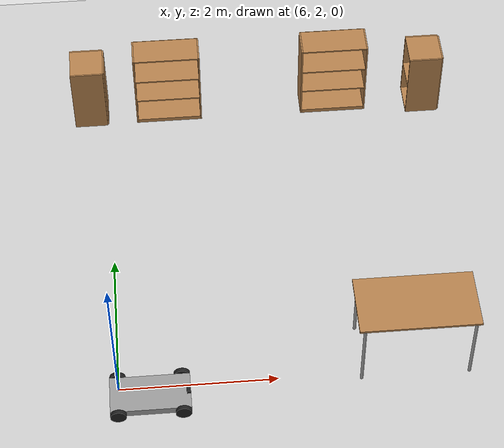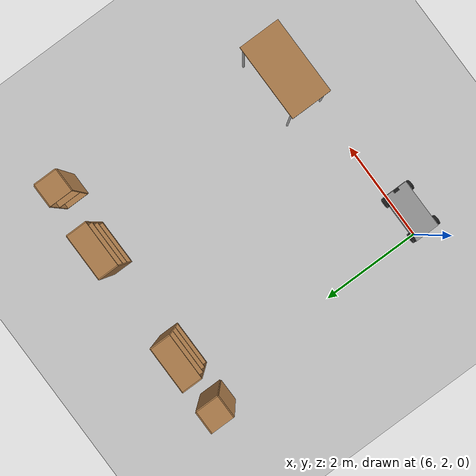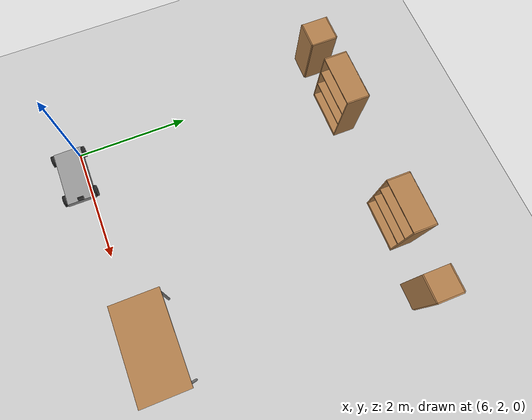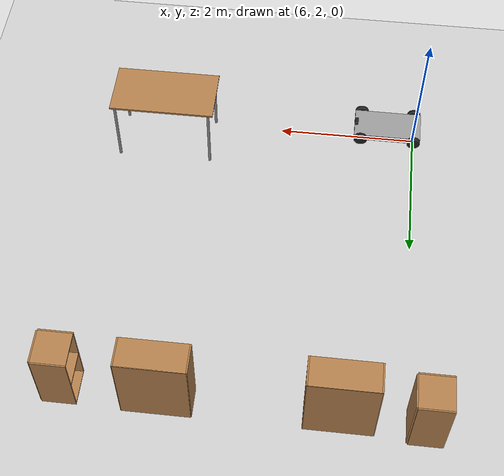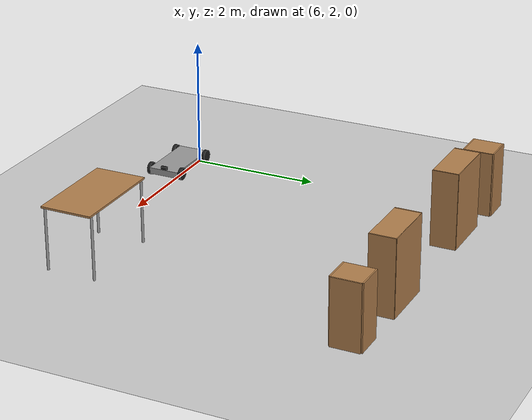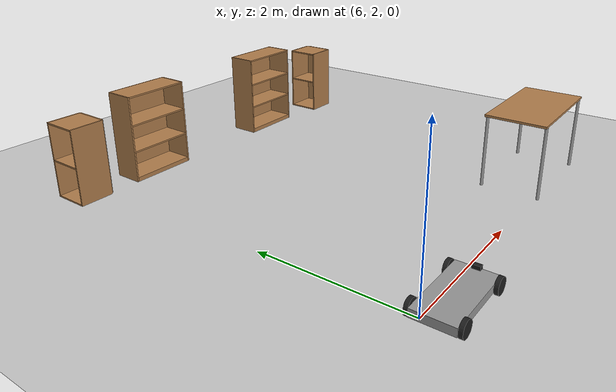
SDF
<sdf version="1.6">
 <world name="default">
  <model name="ground_plane">
   <static>1</static>
   <link name="link">
    <collision name="collision">
     <geometry><plane><normal>0 0 1</normal><size>100 100</size></plane></geometry>
     <surface>
      <contact><collide_bitmask>65535</collide_bitmask></contact>
      <friction><ode><mu>100</mu><mu2>50</mu2></ode></friction>
     </surface>
    </collision>
    <visual name="visual">
     <cast_shadows>0</cast_shadows>
     <geometry><plane><normal>0 0 1</normal><size>100 100</size></plane></geometry>
     <material>
      <script><uri>file://media/materials/scripts/gazebo.material</uri><name>Gazebo/Grey</name></script>
     </material>
    </visual>
   </link>
  </model>
  <model name="Robot">
   <link name="link_0">
    <pose>-0.395787 -0.010871 -0.185833 0 -0 0</pose>
    <inertial>
     <mass>1</mass>
     <inertia>
      <ixx>0.166667</ixx>
      <ixy>0</ixy>
      <ixz>0</ixz>
      <iyy>0.166667</iyy>
      <iyz>0</iyz>
      <izz>0.166667</izz>
     </inertia>
    </inertial>
    <visual name="visual">
     <geometry><box><size>1 0.5 0.1</size></box></geometry>
     <material>
      <lighting>1</lighting>
      <script><uri>file://media/materials/scripts/gazebo.material</uri><name>Gazebo/Grey</name></script>
      <shader type="pixel"><normal_map>__default__</normal_map></shader>
      <ambient>0.5 0.5 0.5 1</ambient>
      <diffuse>1 1 1 1</diffuse>
      <specular>0.11 0.11 0.11 1</specular>
      <emissive>0 0 0 1</emissive>
     </material>
    </visual>
    <collision name="collision">
     <geometry><box><size>1 0.5 0.1</size></box></geometry>
     <surface>
      <friction>
       <ode><mu>1</mu><mu2>1</mu2><fdir1>0 0 0</fdir1><slip1>0</slip1><slip2>0</slip2></ode>
       <torsional>
        <coefficient>1</coefficient>
        <patch_radius>0</patch_radius>
        <surface_radius>0</surface_radius>
        <use_patch_radius>1</use_patch_radius>
        <ode><slip>0</slip></ode>
       </torsional>
      </friction>
      <bounce><restitution_coefficient>0</restitution_coefficient><threshold>1e+06</threshold></bounce>
      <contact>
       <collide_without_contact>0</collide_without_contact>
       <collide_without_contact_bitmask>1</collide_without_contact_bitmask>
       <collide_bitmask>1</collide_bitmask>
       <ode>
        <soft_cfm>0</soft_cfm>
        <soft_erp>0.2</soft_erp>
        <kp>1e+13</kp>
        <kd>1</kd>
        <max_vel>0.01</max_vel>
        <min_depth>0</min_depth>
       </ode>
       <bullet>
        <split_impulse>1</split_impulse>
        <split_impulse_penetration_threshold>-0.01</split_impulse_penetration_threshold>
        <soft_cfm>0</soft_cfm>
        <soft_erp>0.2</soft_erp>
        <kp>1e+13</kp>
        <kd>1</kd>
       </bullet>
      </contact>
     </surface>
    </collision>
   </link>
   <link name="link_1">
    <pose>-0.795787 -0.285871 -0.185833 1.5708 -0 0</pose>
    <inertial>
     <mass>1</mass>
     <inertia><ixx>0.145833</ixx><ixy>0</ixy><ixz>0</ixz><iyy>0.145833</iyy><iyz>0</iyz><izz>0.125</izz></inertia>
    </inertial>
    <visual name="visual">
     <geometry><cylinder><radius>0.1</radius><length>0.05</length></cylinder></geometry>
     <material>
      <lighting>1</lighting>
      <script><uri>file://media/materials/scripts/gazebo.material</uri><name>Gazebo/Black</name></script>
      <shader type="pixel"><normal_map>__default__</normal_map></shader>
      <ambient>0.1 0.1 0.1 1</ambient>
      <diffuse>0.5 0.5 0.5 1</diffuse>
      <specular>0.01 0.01 0.01 1</specular>
      <emissive>0 0 0 1</emissive>
     </material>
    </visual>
    <collision name="collision">
     <geometry><cylinder><radius>0.1</radius><length>0.05</length></cylinder></geometry>
     <surface>
      <friction>
       <ode><mu>1</mu><mu2>1</mu2><fdir1>0 0 0</fdir1><slip1>0</slip1><slip2>0</slip2></ode>
       <torsional>
        <coefficient>1</coefficient>
        <patch_radius>0</patch_radius>
        <surface_radius>0</surface_radius>
        <use_patch_radius>1</use_patch_radius>
        <ode><slip>0</slip></ode>
       </torsional>
      </friction>
      <bounce><restitution_coefficient>0</restitution_coefficient><threshold>1e+06</threshold></bounce>
      <contact>
       <collide_without_contact>0</collide_without_contact>
       <collide_without_contact_bitmask>1</collide_without_contact_bitmask>
       <collide_bitmask>1</collide_bitmask>
       <ode>
        <soft_cfm>0</soft_cfm>
        <soft_erp>0.2</soft_erp>
        <kp>1e+13</kp>
        <kd>1</kd>
        <max_vel>0.01</max_vel>
        <min_depth>0</min_depth>
       </ode>
       <bullet>
        <split_impulse>1</split_impulse>
        <split_impulse_penetration_threshold>-0.01</split_impulse_penetration_threshold>
        <soft_cfm>0</soft_cfm>
        <soft_erp>0.2</soft_erp>
        <kp>1e+13</kp>
        <kd>1</kd>
       </bullet>
      </contact>
     </surface>
    </collision>
   </link>
   <link name="link_1_clone">
    <pose>0.004213 0.264129 -0.185833 1.5708 -0 0</pose>
    <inertial>
     <mass>1</mass>
     <inertia><ixx>0.145833</ixx><ixy>0</ixy><ixz>0</ixz><iyy>0.145833</iyy><iyz>0</iyz><izz>0.125</izz></inertia>
    </inertial>
    <visual name="visual">
     <geometry><cylinder><radius>0.1</radius><length>0.05</length></cylinder></geometry>
     <material>
      <lighting>1</lighting>
      <script><uri>file://media/materials/scripts/gazebo.material</uri><name>Gazebo/Black</name></script>
      <shader type="pixel"><normal_map>__default__</normal_map></shader>
      <ambient>0.1 0.1 0.1 1</ambient>
      <diffuse>0.5 0.5 0.5 1</diffuse>
      <specular>0.01 0.01 0.01 1</specular>
      <emissive>0 0 0 1</emissive>
     </material>
    </visual>
    <collision name="collision">
     <geometry><cylinder><radius>0.1</radius><length>0.05</length></cylinder></geometry>
     <surface>
      <friction>
       <ode><mu>1</mu><mu2>1</mu2><fdir1>0 0 0</fdir1><slip1>0</slip1><slip2>0</slip2></ode>
       <torsional>
        <coefficient>1</coefficient>
        <patch_radius>0</patch_radius>
        <surface_radius>0</surface_radius>
        <use_patch_radius>1</use_patch_radius>
        <ode><slip>0</slip></ode>
       </torsional>
      </friction>
      <bounce><restitution_coefficient>0</restitution_coefficient><threshold>1e+06</threshold></bounce>
      <contact>
       <collide_without_contact>0</collide_without_contact>
       <collide_without_contact_bitmask>1</collide_without_contact_bitmask>
       <collide_bitmask>1</collide_bitmask>
       <ode>
        <soft_cfm>0</soft_cfm>
        <soft_erp>0.2</soft_erp>
        <kp>1e+13</kp>
        <kd>1</kd>
        <max_vel>0.01</max_vel>
        <min_depth>0</min_depth>
       </ode>
       <bullet>
        <split_impulse>1</split_impulse>
        <split_impulse_penetration_threshold>-0.01</split_impulse_penetration_threshold>
        <soft_cfm>0</soft_cfm>
        <soft_erp>0.2</soft_erp>
        <kp>1e+13</kp>
        <kd>1</kd>
       </bullet>
      </contact>
     </surface>
    </collision>
   </link>
   <link name="link_1_clone_0">
    <pose>0.004213 -0.285871 -0.185833 1.5708 -0 0</pose>
    <inertial>
     <mass>1</mass>
     <inertia><ixx>0.145833</ixx><ixy>0</ixy><ixz>0</ixz><iyy>0.145833</iyy><iyz>0</iyz><izz>0.125</izz></inertia>
    </inertial>
    <visual name="visual">
     <geometry><cylinder><radius>0.1</radius><length>0.05</length></cylinder></geometry>
     <material>
      <lighting>1</lighting>
      <script><uri>file://media/materials/scripts/gazebo.material</uri><name>Gazebo/Black</name></script>
      <shader type="pixel"><normal_map>__default__</normal_map></shader>
      <ambient>0.1 0.1 0.1 1</ambient>
      <diffuse>0.5 0.5 0.5 1</diffuse>
      <specular>0.01 0.01 0.01 1</specular>
      <emissive>0 0 0 1</emissive>
     </material>
    </visual>
    <collision name="collision">
     <geometry><cylinder><radius>0.1</radius><length>0.05</length></cylinder></geometry>
     <surface>
      <friction>
       <ode><mu>1</mu><mu2>1</mu2><fdir1>0 0 0</fdir1><slip1>0</slip1><slip2>0</slip2></ode>
       <torsional>
        <coefficient>1</coefficient>
        <patch_radius>0</patch_radius>
        <surface_radius>0</surface_radius>
        <use_patch_radius>1</use_patch_radius>
        <ode><slip>0</slip></ode>
       </torsional>
      </friction>
      <bounce><restitution_coefficient>0</restitution_coefficient><threshold>1e+06</threshold></bounce>
      <contact>
       <collide_without_contact>0</collide_without_contact>
       <collide_without_contact_bitmask>1</collide_without_contact_bitmask>
       <collide_bitmask>1</collide_bitmask>
       <ode>
        <soft_cfm>0</soft_cfm>
        <soft_erp>0.2</soft_erp>
        <kp>1e+13</kp>
        <kd>1</kd>
        <max_vel>0.01</max_vel>
        <min_depth>0</min_depth>
       </ode>
       <bullet>
        <split_impulse>1</split_impulse>
        <split_impulse_penetration_threshold>-0.01</split_impulse_penetration_threshold>
        <soft_cfm>0</soft_cfm>
        <soft_erp>0.2</soft_erp>
        <kp>1e+13</kp>
        <kd>1</kd>
       </bullet>
      </contact>
     </surface>
    </collision>
   </link>
   <link name="link_1_clone_1">
    <pose>-0.795787 0.264129 -0.185833 1.5708 -0 0</pose>
    <inertial>
     <mass>1</mass>
     <inertia><ixx>0.145833</ixx><ixy>0</ixy><ixz>0</ixz><iyy>0.145833</iyy><iyz>0</iyz><izz>0.125</izz></inertia>
    </inertial>
    <visual name="visual">
     <geometry><cylinder><radius>0.1</radius><length>0.05</length></cylinder></geometry>
     <material>
      <lighting>1</lighting>
      <script><uri>file://media/materials/scripts/gazebo.material</uri><name>Gazebo/Black</name></script>
      <shader type="pixel"><normal_map>__default__</normal_map></shader>
      <ambient>0.1 0.1 0.1 1</ambient>
      <diffuse>0.5 0.5 0.5 1</diffuse>
      <specular>0.01 0.01 0.01 1</specular>
      <emissive>0 0 0 1</emissive>
     </material>
    </visual>
    <collision name="collision">
     <geometry><cylinder><radius>0.1</radius><length>0.05</length></cylinder></geometry>
     <surface>
      <friction>
       <ode><mu>1</mu><mu2>1</mu2><fdir1>0 0 0</fdir1><slip1>0</slip1><slip2>0</slip2></ode>
       <torsional>
        <coefficient>1</coefficient>
        <patch_radius>0</patch_radius>
        <surface_radius>0</surface_radius>
        <use_patch_radius>1</use_patch_radius>
        <ode><slip>0</slip></ode>
       </torsional>
      </friction>
      <bounce><restitution_coefficient>0</restitution_coefficient><threshold>1e+06</threshold></bounce>
      <contact>
       <collide_without_contact>0</collide_without_contact>
       <collide_without_contact_bitmask>1</collide_without_contact_bitmask>
       <collide_bitmask>1</collide_bitmask>
       <ode>
        <soft_cfm>0</soft_cfm>
        <soft_erp>0.2</soft_erp>
        <kp>1e+13</kp>
        <kd>1</kd>
        <max_vel>0.01</max_vel>
        <min_depth>0</min_depth>
       </ode>
       <bullet>
        <split_impulse>1</split_impulse>
        <split_impulse_penetration_threshold>-0.01</split_impulse_penetration_threshold>
        <soft_cfm>0</soft_cfm>
        <soft_erp>0.2</soft_erp>
        <kp>1e+13</kp>
        <kd>1</kd>
       </bullet>
      </contact>
     </surface>
    </collision>
   </link>
   <link name="link_2">
    <pose>0.079213 -0.010871 -0.110833 0 -0 0</pose>
    <inertial>
     <mass>1</mass>
     <inertia>
      <ixx>0.166667</ixx>
      <ixy>0</ixy>
      <ixz>0</ixz>
      <iyy>0.166667</iyy>
      <iyz>0</iyz>
      <izz>0.166667</izz>
     </inertia>
    </inertial>
    <visual name="visual">
     <geometry><box><size>0.05 0.1 0.05</size></box></geometry>
     <material>
      <lighting>1</lighting>
      <script><uri>file://media/materials/scripts/gazebo.material</uri><name>Gazebo/Black</name></script>
      <shader type="pixel"><normal_map>__default__</normal_map></shader>
      <ambient>0 0 0 1</ambient>
      <diffuse>0 0 0 1</diffuse>
      <specular>0 0 0 1</specular>
      <emissive>0 0 0 1</emissive>
     </material>
    </visual>
    <collision name="collision">
     <geometry><box><size>0.05 0.1 0.05</size></box></geometry>
     <surface>
      <friction>
       <ode><mu>1</mu><mu2>1</mu2><fdir1>0 0 0</fdir1><slip1>0</slip1><slip2>0</slip2></ode>
       <torsional>
        <coefficient>1</coefficient>
        <patch_radius>0</patch_radius>
        <surface_radius>0</surface_radius>
        <use_patch_radius>1</use_patch_radius>
        <ode><slip>0</slip></ode>
       </torsional>
      </friction>
      <bounce><restitution_coefficient>0</restitution_coefficient><threshold>1e+06</threshold></bounce>
      <contact>
       <collide_without_contact>0</collide_without_contact>
       <collide_without_contact_bitmask>1</collide_without_contact_bitmask>
       <collide_bitmask>1</collide_bitmask>
       <ode>
        <soft_cfm>0</soft_cfm>
        <soft_erp>0.2</soft_erp>
        <kp>1e+13</kp>
        <kd>1</kd>
        <max_vel>0.01</max_vel>
        <min_depth>0</min_depth>
       </ode>
       <bullet>
        <split_impulse>1</split_impulse>
        <split_impulse_penetration_threshold>-0.01</split_impulse_penetration_threshold>
        <soft_cfm>0</soft_cfm>
        <soft_erp>0.2</soft_erp>
        <kp>1e+13</kp>
        <kd>1</kd>
       </bullet>
      </contact>
     </surface>
    </collision>
   </link>
   <joint name="link_0_JOINT_2" type="revolute">
    <parent>link_0</parent>
    <child>link_1</child>
    <axis>
     <xyz>0 0 1</xyz>
     <use_parent_model_frame>0</use_parent_model_frame>
     <limit>
      <lower>-1.79769e+308</lower>
      <upper>1.79769e+308</upper>
      <effort>-1</effort>
      <velocity>-1</velocity>
     </limit>
     <dynamics>
      <spring_reference>0</spring_reference>
      <spring_stiffness>0</spring_stiffness>
      <damping>0</damping>
      <friction>0</friction>
     </dynamics>
    </axis>
    <physics>
     <ode><limit><cfm>0</cfm><erp>0.2</erp></limit><suspension><cfm>0</cfm><erp>0.2</erp></suspension></ode>
    </physics>
   </joint>
   <joint name="link_0_JOINT_3" type="revolute">
    <parent>link_0</parent>
    <child>link_1_clone_1</child>
    <axis>
     <xyz>1 0 0</xyz>
     <use_parent_model_frame>0</use_parent_model_frame>
     <limit>
      <lower>-1.79769e+308</lower>
      <upper>1.79769e+308</upper>
      <effort>-1</effort>
      <velocity>-1</velocity>
     </limit>
     <dynamics>
      <spring_reference>0</spring_reference>
      <spring_stiffness>0</spring_stiffness>
      <damping>0</damping>
      <friction>0</friction>
     </dynamics>
    </axis>
    <physics>
     <ode><limit><cfm>0</cfm><erp>0.2</erp></limit><suspension><cfm>0</cfm><erp>0.2</erp></suspension></ode>
    </physics>
   </joint>
   <joint name="link_0_JOINT_4" type="revolute2">
    <parent>link_0</parent>
    <child>link_1_clone_0</child>
    <axis>
     <xyz>0 0 1</xyz>
     <use_parent_model_frame>0</use_parent_model_frame>
     <limit>
      <lower>-1.79769e+308</lower>
      <upper>1.79769e+308</upper>
      <effort>-1</effort>
      <velocity>-1</velocity>
     </limit>
     <dynamics>
      <spring_reference>0</spring_reference>
      <spring_stiffness>0</spring_stiffness>
      <damping>0</damping>
      <friction>0</friction>
     </dynamics>
    </axis>
    <axis2>
     <xyz>0 1 0</xyz>
     <use_parent_model_frame>0</use_parent_model_frame>
     <dynamics>
      <spring_reference>0</spring_reference>
      <spring_stiffness>0</spring_stiffness>
      <damping>0</damping>
      <friction>0</friction>
     </dynamics>
     <limit>
      <lower>-1.79769e+308</lower>
      <upper>1.79769e+308</upper>
      <effort>-1</effort>
      <velocity>-1</velocity>
     </limit>
    </axis2>
    <physics>
     <ode><limit><cfm>0</cfm><erp>0.2</erp></limit><suspension><cfm>0</cfm><erp>0.2</erp></suspension></ode>
    </physics>
   </joint>
   <joint name="link_0_JOINT_5" type="revolute2">
    <parent>link_0</parent>
    <child>link_1_clone</child>
    <axis>
     <xyz>0 0 1</xyz>
     <use_parent_model_frame>0</use_parent_model_frame>
     <limit>
      <lower>-1.79769e+308</lower>
      <upper>1.79769e+308</upper>
      <effort>-1</effort>
      <velocity>-1</velocity>
     </limit>
     <dynamics>
      <spring_reference>0</spring_reference>
      <spring_stiffness>0</spring_stiffness>
      <damping>0</damping>
      <friction>0</friction>
     </dynamics>
    </axis>
    <axis2>
     <xyz>0 1 0</xyz>
     <use_parent_model_frame>0</use_parent_model_frame>
     <dynamics>
      <spring_reference>0</spring_reference>
      <spring_stiffness>0</spring_stiffness>
      <damping>0</damping>
      <friction>0</friction>
     </dynamics>
     <limit>
      <lower>-1.79769e+308</lower>
      <upper>1.79769e+308</upper>
      <effort>-1</effort>
      <velocity>-1</velocity>
     </limit>
    </axis2>
    <physics>
     <ode><limit><cfm>0</cfm><erp>0.2</erp></limit><suspension><cfm>0</cfm><erp>0.2</erp></suspension></ode>
    </physics>
   </joint>
   <joint name="link_0_JOINT_6" type="fixed">
    <parent>link_0</parent>
    <child>link_2</child>
    <physics>
     <ode><limit><cfm>0</cfm><erp>0.2</erp></limit><suspension><cfm>0</cfm><erp>0.2</erp></suspension></ode>
    </physics>
   </joint>
   <static>0</static>
   <pose>6.78989 1.83731 0.285827 -1e-06 -0 -0.001117</pose>
  </model>
  <model name="cabinet">
   <static>1</static>
   <link name="cabinet_bottom_plate">
    <inertial>
     <pose>0 0 -1 0 -0 0</pose>
     <inertia><ixx>2.05</ixx><ixy>0</ixy><ixz>0</ixz><iyy>2.05</iyy><iyz>0</iyz><izz>2.05</izz></inertia>
     <mass>25</mass>
    </inertial>
    <collision name="cabinet_bottom_plate_geom">
     <pose>0 0 0.01 0 -0 0</pose>
     <geometry><box><size>0.45 0.45 0.02</size></box></geometry>
    </collision>
    <visual name="cabinet_bottom_plate_geom_visual">
     <pose>0 0 0.01 0 -0 0</pose>
     <geometry><box><size>0.45 0.45 0.02</size></box></geometry>
     <material>
      <script><uri>file://media/materials/scripts/gazebo.material</uri><name>Gazebo/Wood</name></script>
     </material>
    </visual>
    <collision name="cabinet_bottom_plate_geom_cabinet_back_plate">
     <pose>0.235 0 0.51 0 -0 0</pose>
     <geometry><box><size>0.02 0.45 1.02</size></box></geometry>
    </collision>
    <visual name="cabinet_bottom_plate_geom_cabinet_back_plate_visual">
     <pose>0.235 0 0.51 0 -0 0</pose>
     <geometry><box><size>0.02 0.45 1.02</size></box></geometry>
     <material>
      <script><uri>file://media/materials/scripts/gazebo.material</uri><name>Gazebo/Wood</name></script>
     </material>
    </visual>
    <collision name="cabinet_bottom_plate_geom_cabinet_left_plate">
     <pose>0 0.235 0.51 0 -0 0</pose>
     <geometry><box><size>0.45 0.02 1.02</size></box></geometry>
    </collision>
    <visual name="cabinet_bottom_plate_geom_cabinet_left_plate_visual">
     <pose>0 0.235 0.51 0 -0 0</pose>
     <geometry><box><size>0.45 0.02 1.02</size></box></geometry>
     <material>
      <script><uri>file://media/materials/scripts/gazebo.material</uri><name>Gazebo/Wood</name></script>
     </material>
    </visual>
    <collision name="cabinet_bottom_plate_geom_cabinet_middle_plate">
     <pose>0 0 0.51 0 -0 0</pose>
     <geometry><box><size>0.45 0.45 0.02</size></box></geometry>
    </collision>
    <visual name="cabinet_bottom_plate_geom_cabinet_middle_plate_visual">
     <pose>0 0 0.51 0 -0 0</pose>
     <geometry><box><size>0.45 0.45 0.02</size></box></geometry>
     <material>
      <script><uri>file://media/materials/scripts/gazebo.material</uri><name>Gazebo/Wood</name></script>
     </material>
    </visual>
    <collision name="cabinet_bottom_plate_geom_cabinet_right_plate">
     <pose>0 -0.235 0.51 0 -0 0</pose>
     <geometry><box><size>0.45 0.02 1.02</size></box></geometry>
    </collision>
    <visual name="cabinet_bottom_plate_geom_cabinet_right_plate_visual">
     <pose>0 -0.235 0.51 0 -0 0</pose>
     <geometry><box><size>0.45 0.02 1.02</size></box></geometry>
     <material>
      <script><uri>file://media/materials/scripts/gazebo.material</uri><name>Gazebo/Wood</name></script>
     </material>
    </visual>
    <collision name="cabinet_bottom_plate_geom_cabinet_top_plate">
     <pose>0 0 1.01 0 -0 0</pose>
     <geometry><box><size>0.45 0.45 0.02</size></box></geometry>
    </collision>
    <visual name="cabinet_bottom_plate_geom_cabinet_top_plate_visual">
     <pose>0 0 1.01 0 -0 0</pose>
     <geometry><box><size>0.45 0.45 0.02</size></box></geometry>
     <material>
      <script><uri>file://media/materials/scripts/gazebo.material</uri><name>Gazebo/Wood</name></script>
     </material>
    </visual>
   </link>
   <pose>5.74006 6.73617 0 0 -0 0</pose>
  </model>
  <model name="cabinet_0">
   <static>1</static>
   <link name="cabinet_bottom_plate">
    <inertial>
     <pose>0 0 -1 0 -0 0</pose>
     <inertia><ixx>2.05</ixx><ixy>0</ixy><ixz>0</ixz><iyy>2.05</iyy><iyz>0</iyz><izz>2.05</izz></inertia>
     <mass>25</mass>
    </inertial>
    <collision name="cabinet_bottom_plate_geom">
     <pose>0 0 0.01 0 -0 0</pose>
     <geometry><box><size>0.45 0.45 0.02</size></box></geometry>
    </collision>
    <visual name="cabinet_bottom_plate_geom_visual">
     <pose>0 0 0.01 0 -0 0</pose>
     <geometry><box><size>0.45 0.45 0.02</size></box></geometry>
     <material>
      <script><uri>file://media/materials/scripts/gazebo.material</uri><name>Gazebo/Wood</name></script>
     </material>
    </visual>
    <collision name="cabinet_bottom_plate_geom_cabinet_back_plate">
     <pose>0.235 0 0.51 0 -0 0</pose>
     <geometry><box><size>0.02 0.45 1.02</size></box></geometry>
    </collision>
    <visual name="cabinet_bottom_plate_geom_cabinet_back_plate_visual">
     <pose>0.235 0 0.51 0 -0 0</pose>
     <geometry><box><size>0.02 0.45 1.02</size></box></geometry>
     <material>
      <script><uri>file://media/materials/scripts/gazebo.material</uri><name>Gazebo/Wood</name></script>
     </material>
    </visual>
    <collision name="cabinet_bottom_plate_geom_cabinet_left_plate">
     <pose>0 0.235 0.51 0 -0 0</pose>
     <geometry><box><size>0.45 0.02 1.02</size></box></geometry>
    </collision>
    <visual name="cabinet_bottom_plate_geom_cabinet_left_plate_visual">
     <pose>0 0.235 0.51 0 -0 0</pose>
     <geometry><box><size>0.45 0.02 1.02</size></box></geometry>
     <material>
      <script><uri>file://media/materials/scripts/gazebo.material</uri><name>Gazebo/Wood</name></script>
     </material>
    </visual>
    <collision name="cabinet_bottom_plate_geom_cabinet_middle_plate">
     <pose>0 0 0.51 0 -0 0</pose>
     <geometry><box><size>0.45 0.45 0.02</size></box></geometry>
    </collision>
    <visual name="cabinet_bottom_plate_geom_cabinet_middle_plate_visual">
     <pose>0 0 0.51 0 -0 0</pose>
     <geometry><box><size>0.45 0.45 0.02</size></box></geometry>
     <material>
      <script><uri>file://media/materials/scripts/gazebo.material</uri><name>Gazebo/Wood</name></script>
     </material>
    </visual>
    <collision name="cabinet_bottom_plate_geom_cabinet_right_plate">
     <pose>0 -0.235 0.51 0 -0 0</pose>
     <geometry><box><size>0.45 0.02 1.02</size></box></geometry>
    </collision>
    <visual name="cabinet_bottom_plate_geom_cabinet_right_plate_visual">
     <pose>0 -0.235 0.51 0 -0 0</pose>
     <geometry><box><size>0.45 0.02 1.02</size></box></geometry>
     <material>
      <script><uri>file://media/materials/scripts/gazebo.material</uri><name>Gazebo/Wood</name></script>
     </material>
    </visual>
    <collision name="cabinet_bottom_plate_geom_cabinet_top_plate">
     <pose>0 0 1.01 0 -0 0</pose>
     <geometry><box><size>0.45 0.45 0.02</size></box></geometry>
    </collision>
    <visual name="cabinet_bottom_plate_geom_cabinet_top_plate_visual">
     <pose>0 0 1.01 0 -0 0</pose>
     <geometry><box><size>0.45 0.45 0.02</size></box></geometry>
     <material>
      <script><uri>file://media/materials/scripts/gazebo.material</uri><name>Gazebo/Wood</name></script>
     </material>
    </visual>
   </link>
   <pose>10.4373 6.648 0 0 -0 0</pose>
  </model>
  <model name="bookshelf">
   <static>1</static>
   <link name="link">
    <inertial><mass>1</mass></inertial>
    <collision name="back">
     <pose>0 0.005 0.6 0 -0 0</pose>
     <geometry><box><size>0.9 0.01 1.2</size></box></geometry>
    </collision>
    <visual name="visual1">
     <pose>0 0.005 0.6 0 -0 0</pose>
     <geometry><box><size>0.9 0.01 1.2</size></box></geometry>
     <material>
      <script><uri>file://media/materials/scripts/gazebo.material</uri><name>Gazebo/Wood</name></script>
     </material>
    </visual>
    <collision name="left_side">
     <pose>0.45 -0.195 0.6 0 -0 0</pose>
     <geometry><box><size>0.02 0.4 1.2</size></box></geometry>
    </collision>
    <visual name="visual2">
     <pose>0.45 -0.195 0.6 0 -0 0</pose>
     <geometry><box><size>0.02 0.4 1.2</size></box></geometry>
     <material>
      <script><uri>file://media/materials/scripts/gazebo.material</uri><name>Gazebo/Wood</name></script>
     </material>
    </visual>
    <collision name="right_side">
     <pose>-0.45 -0.195 0.6 0 -0 0</pose>
     <geometry><box><size>0.02 0.4 1.2</size></box></geometry>
    </collision>
    <visual name="visual3">
     <pose>-0.45 -0.195 0.6 0 -0 0</pose>
     <geometry><box><size>0.02 0.4 1.2</size></box></geometry>
     <material>
      <script><uri>file://media/materials/scripts/gazebo.material</uri><name>Gazebo/Wood</name></script>
     </material>
    </visual>
    <collision name="bottom">
     <pose>0 -0.195 0.03 0 -0 0</pose>
     <geometry><box><size>0.88 0.4 0.06</size></box></geometry>
    </collision>
    <visual name="visual4">
     <pose>0 -0.195 0.03 0 -0 0</pose>
     <geometry><box><size>0.88 0.4 0.06</size></box></geometry>
     <material>
      <script><uri>file://media/materials/scripts/gazebo.material</uri><name>Gazebo/Wood</name></script>
     </material>
    </visual>
    <collision name="top">
     <pose>0 -0.195 1.19 0 -0 0</pose>
     <geometry><box><size>0.88 0.4 0.02</size></box></geometry>
    </collision>
    <visual name="visual5">
     <pose>0 -0.195 1.19 0 -0 0</pose>
     <geometry><box><size>0.88 0.4 0.02</size></box></geometry>
     <material>
      <script><uri>file://media/materials/scripts/gazebo.material</uri><name>Gazebo/Wood</name></script>
     </material>
    </visual>
    <collision name="low_shelf">
     <pose>0 -0.195 0.43 0 -0 0</pose>
     <geometry><box><size>0.88 0.4 0.02</size></box></geometry>
    </collision>
    <visual name="visual6">
     <pose>0 -0.195 0.43 0 -0 0</pose>
     <geometry><box><size>0.88 0.4 0.02</size></box></geometry>
     <material>
      <script><uri>file://media/materials/scripts/gazebo.material</uri><name>Gazebo/Wood</name></script>
     </material>
    </visual>
    <collision name="high_shelf">
     <pose>0 -0.195 0.8 0 -0 0</pose>
     <geometry><box><size>0.88 0.4 0.02</size></box></geometry>
    </collision>
    <visual name="visual7">
     <pose>0 -0.195 0.8 0 -0 0</pose>
     <geometry><box><size>0.88 0.4 0.02</size></box></geometry>
     <material>
      <script><uri>file://media/materials/scripts/gazebo.material</uri><name>Gazebo/Wood</name></script>
     </material>
    </visual>
   </link>
   <pose>6.84495 6.9034 0 0 -0 0</pose>
  </model>
  <model name="bookshelf_0">
   <static>1</static>
   <link name="link">
    <inertial><mass>1</mass></inertial>
    <collision name="back">
     <pose>0 0.005 0.6 0 -0 0</pose>
     <geometry><box><size>0.9 0.01 1.2</size></box></geometry>
    </collision>
    <visual name="visual1">
     <pose>0 0.005 0.6 0 -0 0</pose>
     <geometry><box><size>0.9 0.01 1.2</size></box></geometry>
     <material>
      <script><uri>file://media/materials/scripts/gazebo.material</uri><name>Gazebo/Wood</name></script>
     </material>
    </visual>
    <collision name="left_side">
     <pose>0.45 -0.195 0.6 0 -0 0</pose>
     <geometry><box><size>0.02 0.4 1.2</size></box></geometry>
    </collision>
    <visual name="visual2">
     <pose>0.45 -0.195 0.6 0 -0 0</pose>
     <geometry><box><size>0.02 0.4 1.2</size></box></geometry>
     <material>
      <script><uri>file://media/materials/scripts/gazebo.material</uri><name>Gazebo/Wood</name></script>
     </material>
    </visual>
    <collision name="right_side">
     <pose>-0.45 -0.195 0.6 0 -0 0</pose>
     <geometry><box><size>0.02 0.4 1.2</size></box></geometry>
    </collision>
    <visual name="visual3">
     <pose>-0.45 -0.195 0.6 0 -0 0</pose>
     <geometry><box><size>0.02 0.4 1.2</size></box></geometry>
     <material>
      <script><uri>file://media/materials/scripts/gazebo.material</uri><name>Gazebo/Wood</name></script>
     </material>
    </visual>
    <collision name="bottom">
     <pose>0 -0.195 0.03 0 -0 0</pose>
     <geometry><box><size>0.88 0.4 0.06</size></box></geometry>
    </collision>
    <visual name="visual4">
     <pose>0 -0.195 0.03 0 -0 0</pose>
     <geometry><box><size>0.88 0.4 0.06</size></box></geometry>
     <material>
      <script><uri>file://media/materials/scripts/gazebo.material</uri><name>Gazebo/Wood</name></script>
     </material>
    </visual>
    <collision name="top">
     <pose>0 -0.195 1.19 0 -0 0</pose>
     <geometry><box><size>0.88 0.4 0.02</size></box></geometry>
    </collision>
    <visual name="visual5">
     <pose>0 -0.195 1.19 0 -0 0</pose>
     <geometry><box><size>0.88 0.4 0.02</size></box></geometry>
     <material>
      <script><uri>file://media/materials/scripts/gazebo.material</uri><name>Gazebo/Wood</name></script>
     </material>
    </visual>
    <collision name="low_shelf">
     <pose>0 -0.195 0.43 0 -0 0</pose>
     <geometry><box><size>0.88 0.4 0.02</size></box></geometry>
    </collision>
    <visual name="visual6">
     <pose>0 -0.195 0.43 0 -0 0</pose>
     <geometry><box><size>0.88 0.4 0.02</size></box></geometry>
     <material>
      <script><uri>file://media/materials/scripts/gazebo.material</uri><name>Gazebo/Wood</name></script>
     </material>
    </visual>
    <collision name="high_shelf">
     <pose>0 -0.195 0.8 0 -0 0</pose>
     <geometry><box><size>0.88 0.4 0.02</size></box></geometry>
    </collision>
    <visual name="visual7">
     <pose>0 -0.195 0.8 0 -0 0</pose>
     <geometry><box><size>0.88 0.4 0.02</size></box></geometry>
     <material>
      <script><uri>file://media/materials/scripts/gazebo.material</uri><name>Gazebo/Wood</name></script>
     </material>
    </visual>
   </link>
   <pose>9.1737 6.90323 0 0 -0 0</pose>
  </model>
  <model name="table_4">
   <static>1</static>
   <link name="link">
    <collision name="surface">
     <pose>0 0 1 0 -0 0</pose>
     <geometry><box><size>1.5 0.8 0.03</size></box></geometry>
     <surface><friction><ode><mu>0.6</mu><mu2>0.6</mu2></ode></friction></surface>
    </collision>
    <visual name="visual1">
     <pose>0 0 1 0 -0 0</pose>
     <geometry><box><size>1.5 0.8 0.03</size></box></geometry>
     <material>
      <script><uri>file://media/materials/scripts/gazebo.material</uri><name>Gazebo/Wood</name></script>
     </material>
    </visual>
    <collision name="front_left_leg">
     <pose>0.68 0.38 0.5 0 -0 0</pose>
     <geometry><cylinder><radius>0.02</radius><length>1</length></cylinder></geometry>
    </collision>
    <visual name="front_left_leg">
     <pose>0.68 0.38 0.5 0 -0 0</pose>
     <geometry><cylinder><radius>0.02</radius><length>1</length></cylinder></geometry>
     <material>
      <script><uri>file://media/materials/scripts/gazebo.material</uri><name>Gazebo/Grey</name></script>
     </material>
    </visual>
    <collision name="front_right_leg">
     <pose>0.68 -0.38 0.5 0 -0 0</pose>
     <geometry><cylinder><radius>0.02</radius><length>1</length></cylinder></geometry>
    </collision>
    <visual name="front_right_leg">
     <pose>0.68 -0.38 0.5 0 -0 0</pose>
     <geometry><cylinder><radius>0.02</radius><length>1</length></cylinder></geometry>
     <material>
      <script><uri>file://media/materials/scripts/gazebo.material</uri><name>Gazebo/Grey</name></script>
     </material>
    </visual>
    <collision name="back_right_leg">
     <pose>-0.68 -0.38 0.5 0 -0 0</pose>
     <geometry><cylinder><radius>0.02</radius><length>1</length></cylinder></geometry>
    </collision>
    <visual name="back_right_leg">
     <pose>-0.68 -0.38 0.5 0 -0 0</pose>
     <geometry><cylinder><radius>0.02</radius><length>1</length></cylinder></geometry>
     <material>
      <script><uri>file://media/materials/scripts/gazebo.material</uri><name>Gazebo/Grey</name></script>
     </material>
    </visual>
    <collision name="back_left_leg">
     <pose>-0.68 0.38 0.5 0 -0 0</pose>
     <geometry><cylinder><radius>0.02</radius><length>1</length></cylinder></geometry>
    </collision>
    <visual name="back_left_leg">
     <pose>-0.68 0.38 0.5 0 -0 0</pose>
     <geometry><cylinder><radius>0.02</radius><length>1</length></cylinder></geometry>
     <material>
      <script><uri>file://media/materials/scripts/gazebo.material</uri><name>Gazebo/Grey</name></script>
     </material>
    </visual>
   </link>
   <pose>9.71379 2.30831 0 0 -0 0</pose>
  </model>
 </world>
</sdf>
